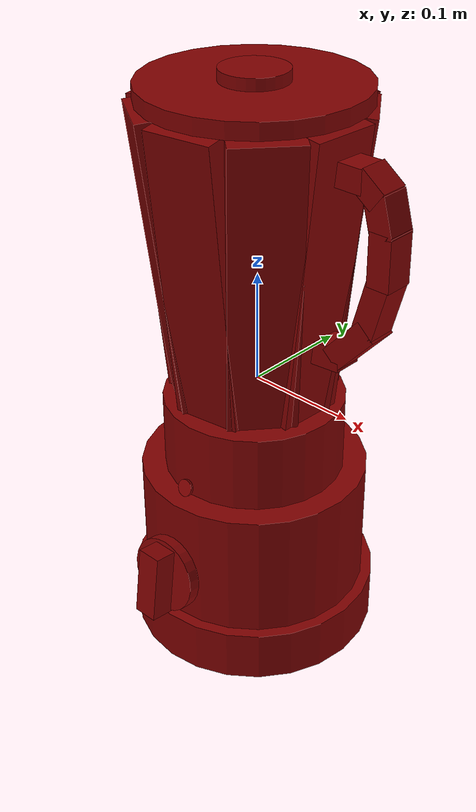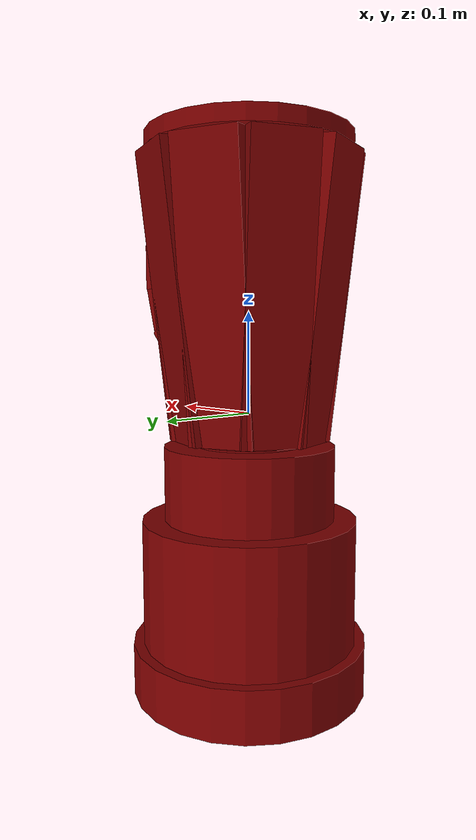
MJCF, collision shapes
<?xml version='1.0' encoding='UTF-8'?>
<mujoco model="model">
  <option timestep="0.002" gravity="0.0 0.0 -9.81"/>
  <compiler angle="radian"/>
  <asset>
    <mesh file="visuals/Blade001.obj" name="Blade001_vis"/>
    <mesh file="visuals/Body001.obj" name="Body001_vis"/>
    <mesh file="visuals/Button001.obj" name="Button001_vis"/>
    <mesh file="visuals/Jug001.obj" name="Jug001_vis"/>
    <mesh file="visuals/Jug001_Clear.obj" name="Jug001_Clear_vis"/>
    <mesh file="visuals/Knob001.obj" name="Knob001_vis"/>
    <mesh file="visuals/Lid001.obj" name="Lid001_vis"/>
    <texture file="visuals/T_BC001.png" name="Body001_material" type="2d"/>
    <material name="Body001_material" rgba="1 1 1 1.0" texture="Body001_material" shininess="0.1" specular="2"/>
    <texture file="visuals/T_BC001.png" name="Button001_material" type="2d"/>
    <material name="Button001_material" rgba="1 1 1 1.0" texture="Button001_material" shininess="-1.0" specular="0.3103448502657381"/>
    <texture file="visuals/T_BC001.png" name="Jug001_Clear_material" type="2d"/>
    <material name="Jug001_Clear_material" rgba="1 1 1 0.699999988079071" texture="Jug001_Clear_material" shininess="0.5" specular="0.3"/>
    <texture file="visuals/T_BC001.png" name="Blade001_material" type="2d"/>
    <material name="Blade001_material" rgba="1 1 1 1.0" texture="Blade001_material" shininess="-1.0" specular="0.3103448502657381"/>
    <texture file="visuals/T_BC001.png" name="Jug001_material" type="2d"/>
    <material name="Jug001_material" rgba="1 1 1 1.0" texture="Jug001_material" shininess="-1.0" specular="0.3103448502657381"/>
    <texture file="visuals/T_BC001.png" name="Lid001_material" type="2d"/>
    <material name="Lid001_material" rgba="1 1 1 1.0" texture="Lid001_material" shininess="-1.0" specular="0.3103448502657381"/>
    <texture file="visuals/T_BC001.png" name="Knob001_material" type="2d"/>
    <material name="Knob001_material" rgba="1 1 1 1.0" texture="Knob001_material" shininess="-1.0" specular="0.3103448502657381"/>
  </asset>
  <default>
    <default class="visual">
      <geom conaffinity="0" contype="0" group="1" type="mesh"/>
    </default>
    <default class="collision">
      <geom group="0" rgba="0.5 0 0 0.5"/>
    </default>
    <default class="spawn">
      <geom group="0" rgba="1 1 1 0.5" contype="0" conaffinity="0"/>
      <site group="0" rgba="1 1 1 0.5"/>
    </default>
    <default class="region">
      <geom group="1" conaffinity="0" contype="0" rgba="0 1 0 0"/>
    </default>
  </default>
  <worldbody>
    <body>
      <body name="object">
        <geom mesh="Body001_vis" type="mesh" solimp="0.998 0.998 0.001" solref="0.001 1" friction="0.95 0.3 0.1" class="visual" material="Body001_material"/>
        <geom class="collision" type="cylinder" pos="-0.01710407 0.01461306 -0.24340511" size="0.11420401930809021 0.02457241900265217" quat="1.0 0.0 0.0 0.0"/>
        <geom class="collision" type="cylinder" pos="-0.01710407 0.01461306 -0.16047613" size="0.10416014492511749 0.06174112856388092" quat="1.0 0.0 0.0 0.0"/>
        <geom class="collision" type="cylinder" pos="-0.01710407 0.01461306 -0.06331500" size="0.08248960971832275 0.035631198436021805" quat="1.0 0.0 0.0 0.0"/>
        <geom class="collision" type="cylinder" pos="-0.01744634 0.01461306 -0.02851922" size="0.051793619990348816 0.00228257873095572" quat="1.0 0.0 0.0 0.0"/>
        <body name="Button001">
          <joint axis="2.1052330248114772e-16 0.9396926164627075 -0.34202006459236145" pos="-0.01725913 -0.07289797 -0.08863721" limited="true" name="Button001_joint" range="0.0 0.002" type="slide" damping="1" frictionloss="1" armature=".01" stiffness="0.5" springref="-0.5"/>
          <geom mesh="Button001_vis" type="mesh" solimp="0.998 0.998 0.001" solref="0.001 1" friction="0.95 0.3 0.1" class="visual" material="Button001_material"/>
          <geom class="collision" type="cylinder" pos="-0.01739287 -0.07417455 -0.08817364" size="0.007670770399272442 0.0013112429296597838" quat="0.8191520571708679 0.5735764503479004 0.0 0.0"/>
        </body>
        <body name="Jug001_Clear">
          <geom class="region" name="reg_int" type="box" pos="-0.017987035 0.014004530000000001 0.11788854" size="0.041594995 0.04146239 0.09560218"/>
          <joint axis="0.0 0.0 1.0" pos="0.00436249 0.01337381 0.10831253" limited="true" name="Jug001_Clear_joint" range="0.0 0.1" type="slide" damping="1" frictionloss="1" armature=".01" stiffness="0.05"/>
          <geom mesh="Jug001_Clear_vis" type="mesh" solimp="0.998 0.998 0.001" solref="0.001 1" friction="0.95 0.3 0.1" class="visual" material="Jug001_Clear_material"/>
          <geom class="collision" type="box" pos="0.10807475 0.01339258 0.20536530" size="0.010490579530596733 0.01306664478033781 0.012952008284628391" quat="0.8922321200370789 0.0 -0.4515770375728607 0.0"/>
          <geom class="collision" type="box" pos="0.08901021 0.01339258 0.20961357" size="0.014333691447973251 0.013066703453660011 0.010490639135241508" quat="1.0 0.0 0.0 0.0"/>
          <geom class="collision" type="box" pos="0.11953825 0.01339258 0.18571712" size="0.010490578599274158 0.01306664478033781 0.017087643966078758" quat="0.9909359216690063 0.0 -0.13433535397052765 0.0"/>
          <geom class="collision" type="box" pos="0.11673198 0.01339258 0.10809786" size="0.010490579530596733 0.01306664478033781 0.025639450177550316" quat="0.9911426305770874 0.0 0.13280166685581207 0.0"/>
          <geom class="collision" type="box" pos="0.12325943 0.01339258 0.15072952" size="0.010673878714442253 0.013066688552498817 0.023233795538544655" quat="1.0 0.0 0.0 0.0"/>
          <geom class="collision" type="box" pos="0.09696562 0.01339258 0.06813032" size="0.010490579530596733 0.01306664478033781 0.025639450177550316" quat="0.9335750341415405 0.0 0.35838204622268677 0.0"/>
          <geom class="collision" type="box" pos="0.07224464 0.01339258 0.04951027" size="0.010490579530596733 0.01306664478033781 0.015172729268670082" quat="0.7355284094810486 0.0 0.6774938702583313 0.0"/>
          <geom class="collision" type="box" pos="-0.00705855 -0.06097613 0.11030882" size="0.031085535883903503 0.010197928175330162 0.13215288519859314" quat="0.996038019657135 0.056299444288015366 0.0038847527466714382 0.06872820109128952"/>
          <geom class="collision" type="box" pos="-0.05876054 -0.04945454 0.11026411" size="0.031270503997802734 0.00983267743140459 0.13223929703235626" quat="0.9557594060897827 0.05402259901165962 -0.016317427158355713 -0.2886854112148285"/>
          <geom class="collision" type="box" pos="-0.08998054 -0.00637722 0.10993672" size="0.030166039243340492 0.009558545425534248 0.13259989023208618" quat="0.7946256399154663 0.04491480067372322 -0.03416666015982628 -0.6044712066650391"/>
          <geom class="collision" type="box" pos="-0.08483451 0.04664568 0.11018597" size="0.030166035518050194 0.009558546356856823 0.13234904408454895" quat="0.5259811878204346 0.02973017282783985 -0.04796688258647919 -0.8486219048500061"/>
          <geom class="collision" type="box" pos="-0.04743597 0.08178499 0.11022729" size="0.03087809681892395 0.009447832591831684 0.13232001662254333" quat="0.2060254067182541 0.011645224876701832 -0.055218569934368134 -0.9769180417060852"/>
          <geom class="collision" type="box" pos="0.00351375 0.08562316 0.11018595" size="0.03126009181141853 0.01046025287359953 0.13224677741527557" quat="0.13694703578948975 0.007740695495158434 0.05589979141950607 0.9889695644378662"/>
          <geom class="collision" type="box" pos="0.04318026 0.05703103 0.11028277" size="0.031155381351709366 0.010312704369425774 0.1321660876274109" quat="0.45098650455474854 0.02549123205244541 0.050347812473773956 0.8907449245452881"/>
          <geom class="collision" type="box" pos="0.05744791 0.00925031 0.11029091" size="0.03061414323747158 0.010745925828814507 0.13210876286029816" quat="0.7223079204559326 0.0408271960914135 0.03895952180027962 0.689265251159668"/>
          <geom class="collision" type="box" pos="0.03938327 -0.03556020 0.11031844" size="0.030436528846621513 0.010561972856521606 0.132101908326149" quat="0.9066253304481506 0.05124542862176895 0.023634959012269974 0.41814568638801575"/>
          <body name="Blade001">
            <joint axis="0.0 0.0 1.0" pos="-0.01587250 0.01367349 0.00086354" limited="false" name="Blade001_joint" range="0 360" type="hinge" damping="1" frictionloss="1" armature=".01" stiffness="0.05"/>
            <geom mesh="Blade001_vis" type="mesh" solimp="0.998 0.998 0.001" solref="0.001 1" friction="0.95 0.3 0.1" class="visual" material="Blade001_material"/>
            <geom class="collision" type="box" pos="-0.04403136 0.00275078 -0.01096113" size="0.007543550338596106 0.0059546735137701035 0.000863152788951993" quat="0.9321237802505493 -0.06661441922187805 -0.2755560278892517 0.2253367006778717"/>
            <geom class="collision" type="box" pos="-0.01994127 0.03065409 0.00657270" size="0.008318131789565086 0.01207124162465334 0.0010331370867788792" quat="0.9443404674530029 0.2828863859176636 -0.04818582162261009 0.16085538268089294"/>
            <geom class="collision" type="box" pos="-0.03203341 0.01025107 -0.00318812" size="0.01066170446574688 0.008802132681012154 0.0008631527307443321" quat="0.9462018013000488 -0.04611463472247124 -0.2797178030014038 0.1559920310974121"/>
            <geom class="collision" type="box" pos="-0.00223216 0.01584994 -0.00022485" size="0.007543550338596106 0.00848355796188116 0.000863152788951993" quat="0.9773774147033691 0.02403903566300869 0.151308074593544 0.14581291377544403"/>
            <geom class="collision" type="box" pos="0.01173143 0.02478434 -0.00461979" size="0.011898030526936054 0.006339432671666145 0.0008631530799902976" quat="0.949954628944397 0.04359858110547066 0.1468711495399475 0.27223920822143555"/>
            <geom class="collision" type="box" pos="-0.01654129 0.01396381 -0.00356026" size="0.010661730542778969 0.010661730542778969 0.006958658341318369" quat="1.0 0.0 0.0 0.0"/>
            <geom class="collision" type="box" pos="-0.02713542 0.04161677 0.01378814" size="0.005351291038095951 0.01207124162465334 0.0010331370867788792" quat="0.9085248112678528 0.2721574008464813 -0.09097743779420853 0.3037039339542389"/>
            <geom class="collision" type="box" pos="-0.00497499 -0.01490533 0.00797065" size="0.005351291038095951 0.011837908066809177 0.0010331370867788792" quat="0.4182606339454651 -0.07813757658004761 -0.13567319512367249 -0.8947319984436035"/>
            <geom class="collision" type="box" pos="-0.01355567 -0.00298768 0.00407296" size="0.008318132720887661 0.012071240693330765 0.0010331370867788792" quat="0.2761724889278412 -0.05641830712556839 -0.14604680240154266 -0.9482700228691101"/>
          </body>
          <body name="Jug001">
            <geom mesh="Jug001_vis" type="mesh" solimp="0.998 0.998 0.001" solref="0.001 1" friction="0.95 0.3 0.1" class="visual" material="Jug001_material"/>
            <geom class="collision" type="box" pos="0.10807475 0.01339258 0.20536530" size="0.010490579530596733 0.01306664478033781 0.012952008284628391" quat="0.8922321200370789 0.0 -0.4515770375728607 0.0"/>
            <geom class="collision" type="box" pos="0.08901021 0.01339258 0.20961357" size="0.014333691447973251 0.013066703453660011 0.010490639135241508" quat="1.0 0.0 0.0 0.0"/>
            <geom class="collision" type="box" pos="0.11953825 0.01339258 0.18571712" size="0.010490578599274158 0.01306664478033781 0.017087643966078758" quat="0.9909359216690063 0.0 -0.13433535397052765 0.0"/>
            <geom class="collision" type="box" pos="0.11673198 0.01339258 0.10809786" size="0.010490579530596733 0.01306664478033781 0.025639450177550316" quat="0.9911426305770874 0.0 0.13280166685581207 0.0"/>
            <geom class="collision" type="box" pos="0.12325943 0.01339258 0.15072952" size="0.010673878714442253 0.013066688552498817 0.023233795538544655" quat="1.0 0.0 0.0 0.0"/>
            <geom class="collision" type="box" pos="0.09696562 0.01339258 0.06813032" size="0.010490579530596733 0.01306664478033781 0.025639450177550316" quat="0.9335750341415405 0.0 0.35838204622268677 0.0"/>
            <geom class="collision" type="box" pos="0.07224464 0.01339258 0.04951027" size="0.010490579530596733 0.01306664478033781 0.015172729268670082" quat="0.7355284094810486 0.0 0.6774938702583313 0.0"/>
            <geom class="collision" type="box" pos="-0.00705855 -0.06097613 0.11030882" size="0.031085535883903503 0.010197928175330162 0.13215288519859314" quat="0.996038019657135 0.056299444288015366 0.0038847527466714382 0.06872820109128952"/>
            <geom class="collision" type="box" pos="-0.05876054 -0.04945454 0.11026411" size="0.031270503997802734 0.00983267743140459 0.13223929703235626" quat="0.9557594060897827 0.05402259901165962 -0.016317427158355713 -0.2886854112148285"/>
            <geom class="collision" type="box" pos="-0.08998054 -0.00637722 0.10993672" size="0.030166039243340492 0.009558545425534248 0.13259989023208618" quat="0.7946256399154663 0.04491480067372322 -0.03416666015982628 -0.6044712066650391"/>
            <geom class="collision" type="box" pos="-0.08483451 0.04664568 0.11018597" size="0.030166035518050194 0.009558546356856823 0.13234904408454895" quat="0.5259811878204346 0.02973017282783985 -0.04796688258647919 -0.8486219048500061"/>
            <geom class="collision" type="box" pos="-0.04743597 0.08178499 0.11022729" size="0.03087809681892395 0.009447832591831684 0.13232001662254333" quat="0.2060254067182541 0.011645224876701832 -0.055218569934368134 -0.9769180417060852"/>
            <geom class="collision" type="box" pos="0.00351375 0.08562316 0.11018595" size="0.03126009181141853 0.01046025287359953 0.13224677741527557" quat="0.13694703578948975 0.007740695495158434 0.05589979141950607 0.9889695644378662"/>
            <geom class="collision" type="box" pos="0.04318026 0.05703103 0.11028277" size="0.031155381351709366 0.010312704369425774 0.1321660876274109" quat="0.45098650455474854 0.02549123205244541 0.050347812473773956 0.8907449245452881"/>
            <geom class="collision" type="box" pos="0.05744791 0.00925031 0.11029091" size="0.03061414323747158 0.010745925828814507 0.13210876286029816" quat="0.7223079204559326 0.0408271960914135 0.03895952180027962 0.689265251159668"/>
            <geom class="collision" type="box" pos="0.03938327 -0.03556020 0.11031844" size="0.030436528846621513 0.010561972856521606 0.132101908326149" quat="0.9066253304481506 0.05124542862176895 0.023634959012269974 0.41814568638801575"/>
          </body>
          <body name="Lid001">
            <joint axis="0.0 0.0 1.0" pos="-0.02527849 0.01451128 0.24440110" limited="true" name="Lid001_joint" range="0.0 0.06" type="slide" damping="1" frictionloss="1" armature=".01" stiffness="0.05"/>
            <geom mesh="Lid001_vis" type="mesh" solimp="0.998 0.998 0.001" solref="0.001 1" friction="0.95 0.3 0.1" class="visual" material="Lid001_material"/>
            <geom class="collision" type="cylinder" pos="-0.01710407 0.01461306 0.26174773" size="0.029718130826950073 0.006432304158806801" quat="1.0 0.0 0.0 0.0"/>
            <geom class="collision" type="cylinder" pos="-0.01710407 0.01461306 0.25053118" size="0.09667138755321503 0.007239523343741894" quat="1.0 0.0 0.0 0.0"/>
          </body>
        </body>
        <body name="Knob001">
          <joint axis="0.0 0.9925461411476135 -0.12186935544013977" pos="-0.01719670 -0.10644554 -0.16844347" limited="true" name="Knob001_joint" range="0.0 3.141592653589793" type="hinge" damping="0.05" frictionloss="0.1" armature="0.001"/>
          <geom mesh="Knob001_vis" type="mesh" solimp="0.998 0.998 0.001" solref="0.001 1" friction="0.95 0.3 0.1" class="visual" material="Knob001_material"/>
          <geom class="collision" type="cylinder" pos="-0.01749495 -0.10016384 -0.16858727" size="0.034635256975889206 0.005235915072262287" quat="0.7496716380119324 0.6618099808692932 9.754605955689771e-18 -9.754609264412222e-18" density="0.001"/>
          <geom class="collision" type="box" pos="-0.01679865 -0.11490864 -0.16854331" size="0.011307786218822002 0.011307784356176853 0.03182763233780861" quat="0.997879683971405 -0.06508558243513107 5.175686990099848e-09 -7.935264534353337e-08" density="0.001"/>
        </body>
        <geom class="region" name="reg_main" type="box" pos="-0.017274990000000004 0.014488065000000001 -1.000000000001e-06" size="0.11622600000000001 0.11587593500000001 0.26933248"/>
      </body>
    </body>
  </worldbody>
  <actuator>
    <motor name="Button001_joint_actuator" joint="Button001_joint" gear="0.1"/>
    <motor name="Jug001_Clear_joint_actuator" joint="Jug001_Clear_joint" gear="500"/>
    <motor name="Knob001_joint_actuator" joint="Knob001_joint" gear="10"/>
    <motor name="Blade001_joint_actuator" joint="Blade001_joint" gear="10"/>
    <motor name="Lid001_joint_actuator" joint="Lid001_joint" gear="50"/>
  </actuator>
</mujoco>
